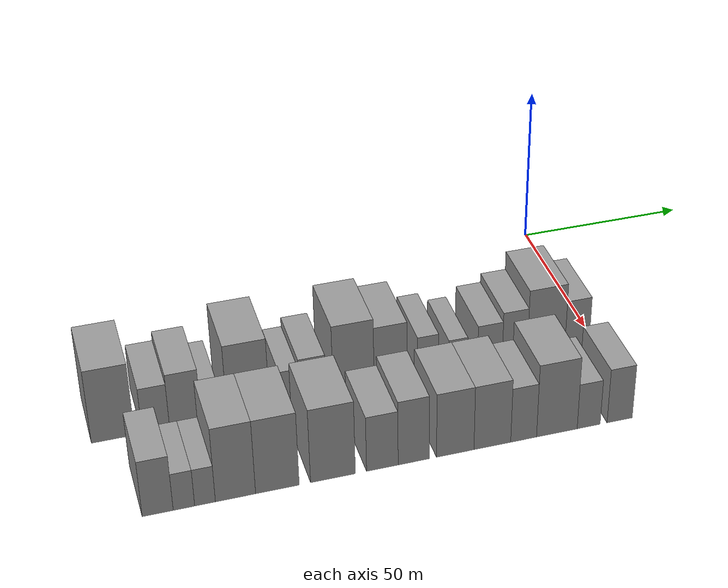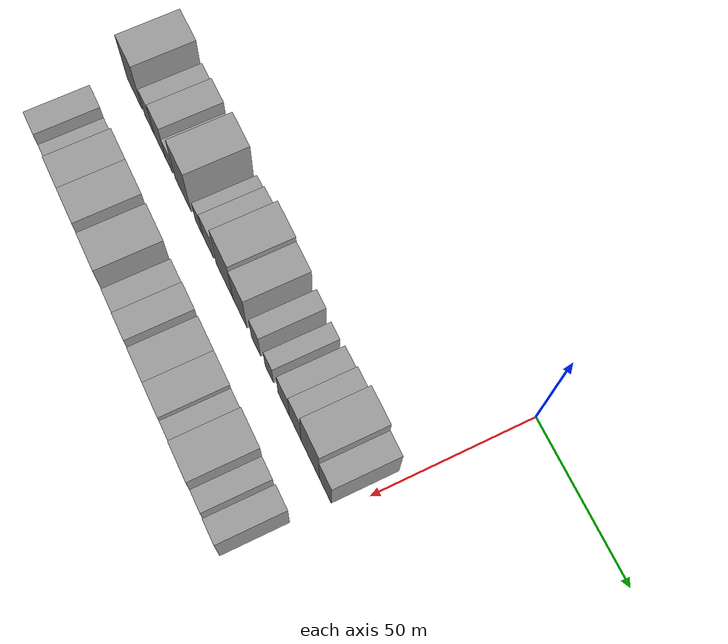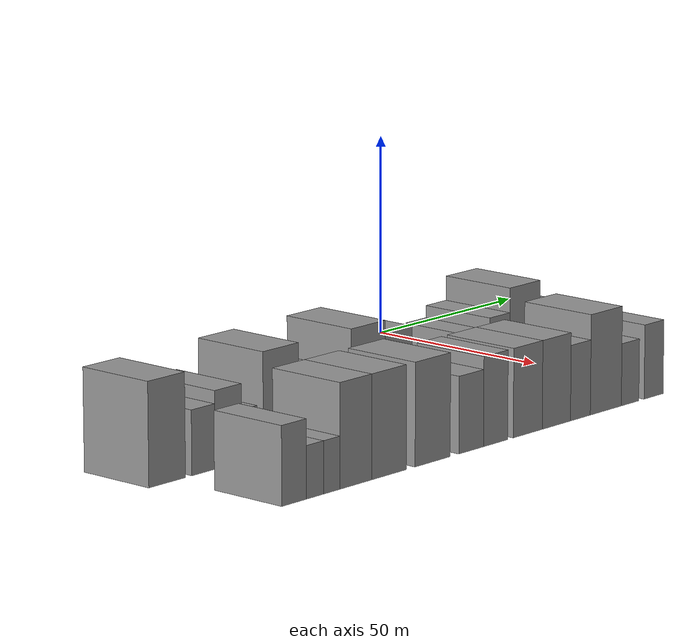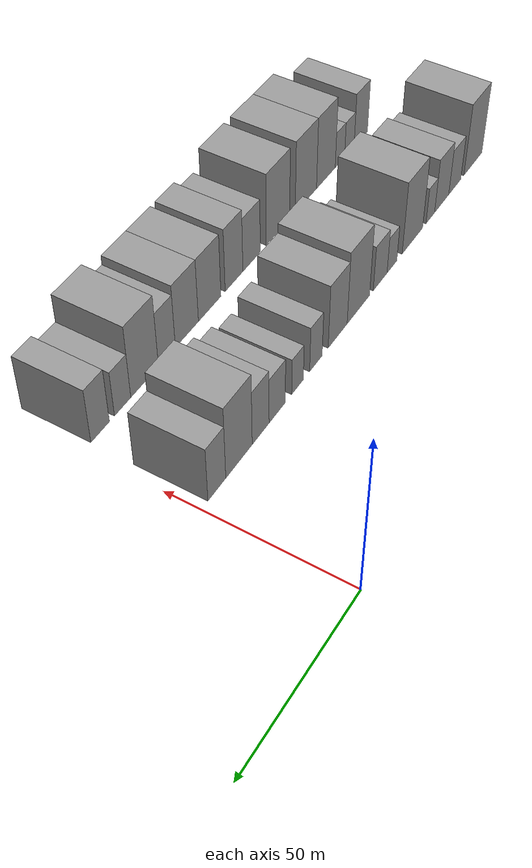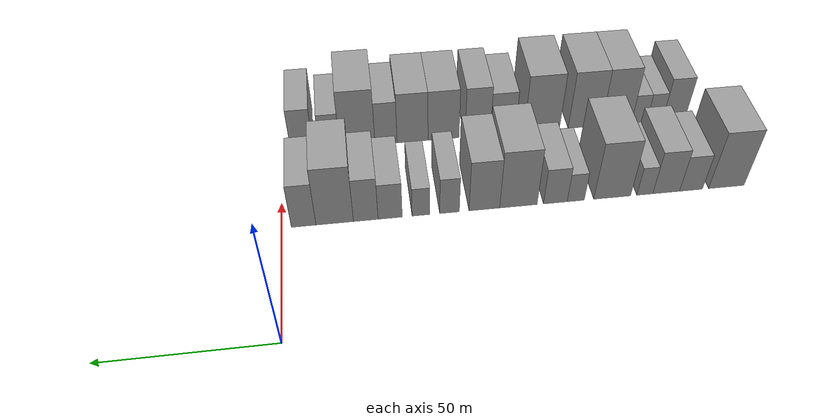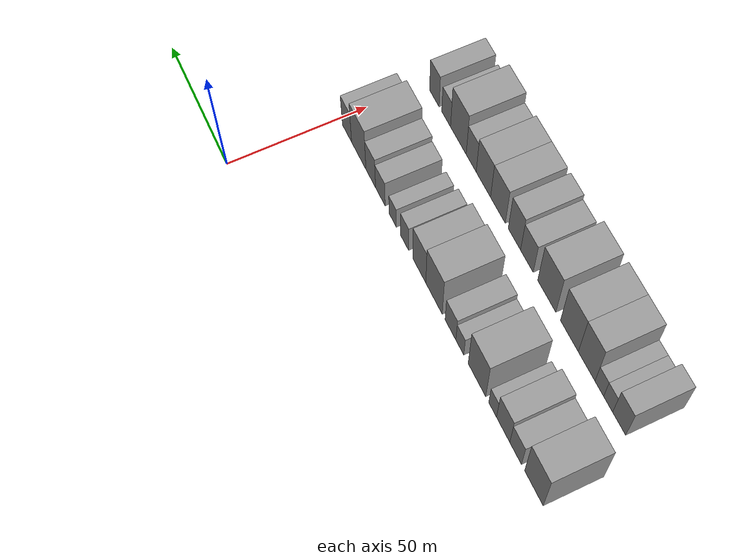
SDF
<sdf version="1.6">
 <world name="default">
  <model name="building_16">
   <static>1</static>
   <pose>50.0000 -138.3980 0 0.000000 0.000000 0.000000</pose>
   <link name="link">
    <pose>0 0 12.00 0 0 0</pose>
    <collision name="collision"><geometry><box><size>20.0000 11.5305 24.0000</size></box></geometry></collision>
    <visual name="visual">
     <cast_shadows>0</cast_shadows>
     <geometry><box><size>20.0000 11.5305 24.0000</size></box></geometry>
     <material>
      <script>
       <uri>model://grey_wall/materials/scripts</uri>
       <uri>model://grey_wall/materials/textures</uri>
       <name>vrc/grey_wall</name>
      </script>
     </material>
    </visual>
   </link>
  </model>
  <model name="building_17">
   <static>1</static>
   <pose>50.0000 -126.9144 0 0.000000 0.000000 0.000000</pose>
   <link name="link">
    <pose>0 0 7.50 0 0 0</pose>
    <collision name="collision"><geometry><box><size>20.0000 7.4367 15.0000</size></box></geometry></collision>
    <visual name="visual">
     <cast_shadows>0</cast_shadows>
     <geometry><box><size>20.0000 7.4367 15.0000</size></box></geometry>
     <material>
      <script>
       <uri>model://grey_wall/materials/scripts</uri>
       <uri>model://grey_wall/materials/textures</uri>
       <name>vrc/grey_wall</name>
      </script>
     </material>
    </visual>
   </link>
  </model>
  <model name="building_18">
   <static>1</static>
   <pose>50.0000 -118.8978 0 0.000000 0.000000 0.000000</pose>
   <link name="link">
    <pose>0 0 9.00 0 0 0</pose>
    <collision name="collision"><geometry><box><size>20.0000 8.5964 18.0000</size></box></geometry></collision>
    <visual name="visual">
     <cast_shadows>0</cast_shadows>
     <geometry><box><size>20.0000 8.5964 18.0000</size></box></geometry>
     <material>
      <script>
       <uri>model://grey_wall/materials/scripts</uri>
       <uri>model://grey_wall/materials/textures</uri>
       <name>vrc/grey_wall</name>
      </script>
     </material>
    </visual>
   </link>
  </model>
  <model name="building_19">
   <static>1</static>
   <pose>50.0000 -112.0478 0 0.000000 0.000000 0.000000</pose>
   <link name="link">
    <pose>0 0 6.00 0 0 0</pose>
    <collision name="collision"><geometry><box><size>20.0000 5.1036 12.0000</size></box></geometry></collision>
    <visual name="visual">
     <cast_shadows>0</cast_shadows>
     <geometry><box><size>20.0000 5.1036 12.0000</size></box></geometry>
     <material>
      <script>
       <uri>model://grey_wall/materials/scripts</uri>
       <uri>model://grey_wall/materials/textures</uri>
       <name>vrc/grey_wall</name>
      </script>
     </material>
    </visual>
   </link>
  </model>
  <model name="building_20">
   <static>1</static>
   <pose>50.0000 -101.6275 0 0.000000 0.000000 0.000000</pose>
   <link name="link">
    <pose>0 0 12.00 0 0 0</pose>
    <collision name="collision"><geometry><box><size>20.0000 11.7370 24.0000</size></box></geometry></collision>
    <visual name="visual">
     <cast_shadows>0</cast_shadows>
     <geometry><box><size>20.0000 11.7370 24.0000</size></box></geometry>
     <material>
      <script>
       <uri>model://grey_wall/materials/scripts</uri>
       <uri>model://grey_wall/materials/textures</uri>
       <name>vrc/grey_wall</name>
      </script>
     </material>
    </visual>
   </link>
  </model>
  <model name="building_21">
   <static>1</static>
   <pose>50.0000 -90.0536 0 0.000000 0.000000 0.000000</pose>
   <link name="link">
    <pose>0 0 6.00 0 0 0</pose>
    <collision name="collision"><geometry><box><size>20.0000 5.4109 12.0000</size></box></geometry></collision>
    <visual name="visual">
     <cast_shadows>0</cast_shadows>
     <geometry><box><size>20.0000 5.4109 12.0000</size></box></geometry>
     <material>
      <script>
       <uri>model://grey_wall/materials/scripts</uri>
       <uri>model://grey_wall/materials/textures</uri>
       <name>vrc/grey_wall</name>
      </script>
     </material>
    </visual>
   </link>
  </model>
  <model name="building_22">
   <static>1</static>
   <pose>50.0000 -83.6219 0 0.000000 0.000000 0.000000</pose>
   <link name="link">
    <pose>0 0 7.50 0 0 0</pose>
    <collision name="collision"><geometry><box><size>20.0000 7.4524 15.0000</size></box></geometry></collision>
    <visual name="visual">
     <cast_shadows>0</cast_shadows>
     <geometry><box><size>20.0000 7.4524 15.0000</size></box></geometry>
     <material>
      <script>
       <uri>model://grey_wall/materials/scripts</uri>
       <uri>model://grey_wall/materials/textures</uri>
       <name>vrc/grey_wall</name>
      </script>
     </material>
    </visual>
   </link>
  </model>
  <model name="building_23">
   <static>1</static>
   <pose>50.0000 -72.0594 0 0.000000 0.000000 0.000000</pose>
   <link name="link">
    <pose>0 0 12.00 0 0 0</pose>
    <collision name="collision"><geometry><box><size>20.0000 11.6725 24.0000</size></box></geometry></collision>
    <visual name="visual">
     <cast_shadows>0</cast_shadows>
     <geometry><box><size>20.0000 11.6725 24.0000</size></box></geometry>
     <material>
      <script>
       <uri>model://grey_wall/materials/scripts</uri>
       <uri>model://grey_wall/materials/textures</uri>
       <name>vrc/grey_wall</name>
      </script>
     </material>
    </visual>
   </link>
  </model>
  <model name="building_24">
   <static>1</static>
   <pose>50.0000 -61.4678 0 0.000000 0.000000 0.000000</pose>
   <link name="link">
    <pose>0 0 10.50 0 0 0</pose>
    <collision name="collision"><geometry><box><size>20.0000 9.5107 21.0000</size></box></geometry></collision>
    <visual name="visual">
     <cast_shadows>0</cast_shadows>
     <geometry><box><size>20.0000 9.5107 21.0000</size></box></geometry>
     <material>
      <script>
       <uri>model://grey_wall/materials/scripts</uri>
       <uri>model://grey_wall/materials/textures</uri>
       <name>vrc/grey_wall</name>
      </script>
     </material>
    </visual>
   </link>
  </model>
  <model name="building_25">
   <static>1</static>
   <pose>50.0000 -50.6916 0 0.000000 0.000000 0.000000</pose>
   <link name="link">
    <pose>0 0 7.50 0 0 0</pose>
    <collision name="collision"><geometry><box><size>20.0000 6.0417 15.0000</size></box></geometry></collision>
    <visual name="visual">
     <cast_shadows>0</cast_shadows>
     <geometry><box><size>20.0000 6.0417 15.0000</size></box></geometry>
     <material>
      <script>
       <uri>model://grey_wall/materials/scripts</uri>
       <uri>model://grey_wall/materials/textures</uri>
       <name>vrc/grey_wall</name>
      </script>
     </material>
    </visual>
   </link>
  </model>
  <model name="building_26">
   <static>1</static>
   <pose>50.0000 -41.9416 0 0.000000 0.000000 0.000000</pose>
   <link name="link">
    <pose>0 0 6.00 0 0 0</pose>
    <collision name="collision"><geometry><box><size>20.0000 5.4582 12.0000</size></box></geometry></collision>
    <visual name="visual">
     <cast_shadows>0</cast_shadows>
     <geometry><box><size>20.0000 5.4582 12.0000</size></box></geometry>
     <material>
      <script>
       <uri>model://grey_wall/materials/scripts</uri>
       <uri>model://grey_wall/materials/textures</uri>
       <name>vrc/grey_wall</name>
      </script>
     </material>
    </visual>
   </link>
  </model>
  <model name="building_27">
   <static>1</static>
   <pose>50.0000 -32.5497 0 0.000000 0.000000 0.000000</pose>
   <link name="link">
    <pose>0 0 7.50 0 0 0</pose>
    <collision name="collision"><geometry><box><size>20.0000 7.3256 15.0000</size></box></geometry></collision>
    <visual name="visual">
     <cast_shadows>0</cast_shadows>
     <geometry><box><size>20.0000 7.3256 15.0000</size></box></geometry>
     <material>
      <script>
       <uri>model://grey_wall/materials/scripts</uri>
       <uri>model://grey_wall/materials/textures</uri>
       <name>vrc/grey_wall</name>
      </script>
     </material>
    </visual>
   </link>
  </model>
  <model name="building_28">
   <static>1</static>
   <pose>50.0000 -25.1557 0 0.000000 0.000000 0.000000</pose>
   <link name="link">
    <pose>0 0 9.00 0 0 0</pose>
    <collision name="collision"><geometry><box><size>20.0000 7.4624 18.0000</size></box></geometry></collision>
    <visual name="visual">
     <cast_shadows>0</cast_shadows>
     <geometry><box><size>20.0000 7.4624 18.0000</size></box></geometry>
     <material>
      <script>
       <uri>model://grey_wall/materials/scripts</uri>
       <uri>model://grey_wall/materials/textures</uri>
       <name>vrc/grey_wall</name>
      </script>
     </material>
    </visual>
   </link>
  </model>
  <model name="building_29">
   <static>1</static>
   <pose>50.0000 -15.7782 0 0.000000 0.000000 0.000000</pose>
   <link name="link">
    <pose>0 0 12.00 0 0 0</pose>
    <collision name="collision"><geometry><box><size>20.0000 11.2925 24.0000</size></box></geometry></collision>
    <visual name="visual">
     <cast_shadows>0</cast_shadows>
     <geometry><box><size>20.0000 11.2925 24.0000</size></box></geometry>
     <material>
      <script>
       <uri>model://grey_wall/materials/scripts</uri>
       <uri>model://grey_wall/materials/textures</uri>
       <name>vrc/grey_wall</name>
      </script>
     </material>
    </visual>
   </link>
  </model>
  <model name="building_30">
   <static>1</static>
   <pose>50.0000 -6.4503 0 0.000000 0.000000 0.000000</pose>
   <link name="link">
    <pose>0 0 9.00 0 0 0</pose>
    <collision name="collision"><geometry><box><size>20.0000 7.3634 18.0000</size></box></geometry></collision>
    <visual name="visual">
     <cast_shadows>0</cast_shadows>
     <geometry><box><size>20.0000 7.3634 18.0000</size></box></geometry>
     <material>
      <script>
       <uri>model://grey_wall/materials/scripts</uri>
       <uri>model://grey_wall/materials/textures</uri>
       <name>vrc/grey_wall</name>
      </script>
     </material>
    </visual>
   </link>
  </model>
  <model name="building_74">
   <static>1</static>
   <pose>82.0000 -132.0111 0 0.000000 0.000000 0.000000</pose>
   <link name="link">
    <pose>0 0 9.00 0 0 0</pose>
    <collision name="collision"><geometry><box><size>20.0000 7.8913 18.0000</size></box></geometry></collision>
    <visual name="visual">
     <cast_shadows>0</cast_shadows>
     <geometry><box><size>20.0000 7.8913 18.0000</size></box></geometry>
     <material>
      <script>
       <uri>model://grey_wall/materials/scripts</uri>
       <uri>model://grey_wall/materials/textures</uri>
       <name>vrc/grey_wall</name>
      </script>
     </material>
    </visual>
   </link>
  </model>
  <model name="building_75">
   <static>1</static>
   <pose>82.0000 -125.3163 0 0.000000 0.000000 0.000000</pose>
   <link name="link">
    <pose>0 0 6.00 0 0 0</pose>
    <collision name="collision"><geometry><box><size>20.0000 5.4982 12.0000</size></box></geometry></collision>
    <visual name="visual">
     <cast_shadows>0</cast_shadows>
     <geometry><box><size>20.0000 5.4982 12.0000</size></box></geometry>
     <material>
      <script>
       <uri>model://grey_wall/materials/scripts</uri>
       <uri>model://grey_wall/materials/textures</uri>
       <name>vrc/grey_wall</name>
      </script>
     </material>
    </visual>
   </link>
  </model>
  <model name="building_76">
   <static>1</static>
   <pose>82.0000 -119.8994 0 0.000000 0.000000 0.000000</pose>
   <link name="link">
    <pose>0 0 6.00 0 0 0</pose>
    <collision name="collision"><geometry><box><size>20.0000 5.3358 12.0000</size></box></geometry></collision>
    <visual name="visual">
     <cast_shadows>0</cast_shadows>
     <geometry><box><size>20.0000 5.3358 12.0000</size></box></geometry>
     <material>
      <script>
       <uri>model://grey_wall/materials/scripts</uri>
       <uri>model://grey_wall/materials/textures</uri>
       <name>vrc/grey_wall</name>
      </script>
     </material>
    </visual>
   </link>
  </model>
  <model name="building_77">
   <static>1</static>
   <pose>82.0000 -112.0105 0 0.000000 0.000000 0.000000</pose>
   <link name="link">
    <pose>0 0 12.00 0 0 0</pose>
    <collision name="collision"><geometry><box><size>20.0000 10.4420 24.0000</size></box></geometry></collision>
    <visual name="visual">
     <cast_shadows>0</cast_shadows>
     <geometry><box><size>20.0000 10.4420 24.0000</size></box></geometry>
     <material>
      <script>
       <uri>model://grey_wall/materials/scripts</uri>
       <uri>model://grey_wall/materials/textures</uri>
       <name>vrc/grey_wall</name>
      </script>
     </material>
    </visual>
   </link>
  </model>
  <model name="building_78">
   <static>1</static>
   <pose>82.0000 -101.0616 0 0.000000 0.000000 0.000000</pose>
   <link name="link">
    <pose>0 0 12.00 0 0 0</pose>
    <collision name="collision"><geometry><box><size>20.0000 11.4559 24.0000</size></box></geometry></collision>
    <visual name="visual">
     <cast_shadows>0</cast_shadows>
     <geometry><box><size>20.0000 11.4559 24.0000</size></box></geometry>
     <material>
      <script>
       <uri>model://grey_wall/materials/scripts</uri>
       <uri>model://grey_wall/materials/textures</uri>
       <name>vrc/grey_wall</name>
      </script>
     </material>
    </visual>
   </link>
  </model>
  <model name="building_79">
   <static>1</static>
   <pose>82.0000 -86.3433 0 0.000000 0.000000 0.000000</pose>
   <link name="link">
    <pose>0 0 12.00 0 0 0</pose>
    <collision name="collision"><geometry><box><size>20.0000 11.9807 24.0000</size></box></geometry></collision>
    <visual name="visual">
     <cast_shadows>0</cast_shadows>
     <geometry><box><size>20.0000 11.9807 24.0000</size></box></geometry>
     <material>
      <script>
       <uri>model://grey_wall/materials/scripts</uri>
       <uri>model://grey_wall/materials/textures</uri>
       <name>vrc/grey_wall</name>
      </script>
     </material>
    </visual>
   </link>
  </model>
  <model name="building_80">
   <static>1</static>
   <pose>82.0000 -73.0701 0 0.000000 0.000000 0.000000</pose>
   <link name="link">
    <pose>0 0 9.00 0 0 0</pose>
    <collision name="collision"><geometry><box><size>20.0000 8.5657 18.0000</size></box></geometry></collision>
    <visual name="visual">
     <cast_shadows>0</cast_shadows>
     <geometry><box><size>20.0000 8.5657 18.0000</size></box></geometry>
     <material>
      <script>
       <uri>model://grey_wall/materials/scripts</uri>
       <uri>model://grey_wall/materials/textures</uri>
       <name>vrc/grey_wall</name>
      </script>
     </material>
    </visual>
   </link>
  </model>
  <model name="building_81">
   <static>1</static>
   <pose>82.0000 -64.5421 0 0.000000 0.000000 0.000000</pose>
   <link name="link">
    <pose>0 0 10.50 0 0 0</pose>
    <collision name="collision"><geometry><box><size>20.0000 8.4904 21.0000</size></box></geometry></collision>
    <visual name="visual">
     <cast_shadows>0</cast_shadows>
     <geometry><box><size>20.0000 8.4904 21.0000</size></box></geometry>
     <material>
      <script>
       <uri>model://grey_wall/materials/scripts</uri>
       <uri>model://grey_wall/materials/textures</uri>
       <name>vrc/grey_wall</name>
      </script>
     </material>
    </visual>
   </link>
  </model>
  <model name="building_82">
   <static>1</static>
   <pose>82.0000 -53.1155 0 0.000000 0.000000 0.000000</pose>
   <link name="link">
    <pose>0 0 10.50 0 0 0</pose>
    <collision name="collision"><geometry><box><size>20.0000 10.3629 21.0000</size></box></geometry></collision>
    <visual name="visual">
     <cast_shadows>0</cast_shadows>
     <geometry><box><size>20.0000 10.3629 21.0000</size></box></geometry>
     <material>
      <script>
       <uri>model://grey_wall/materials/scripts</uri>
       <uri>model://grey_wall/materials/textures</uri>
       <name>vrc/grey_wall</name>
      </script>
     </material>
    </visual>
   </link>
  </model>
  <model name="building_83">
   <static>1</static>
   <pose>82.0000 -42.7945 0 0.000000 0.000000 0.000000</pose>
   <link name="link">
    <pose>0 0 10.50 0 0 0</pose>
    <collision name="collision"><geometry><box><size>20.0000 10.2789 21.0000</size></box></geometry></collision>
    <visual name="visual">
     <cast_shadows>0</cast_shadows>
     <geometry><box><size>20.0000 10.2789 21.0000</size></box></geometry>
     <material>
      <script>
       <uri>model://grey_wall/materials/scripts</uri>
       <uri>model://grey_wall/materials/textures</uri>
       <name>vrc/grey_wall</name>
      </script>
     </material>
    </visual>
   </link>
  </model>
  <model name="building_84">
   <static>1</static>
   <pose>82.0000 -34.0099 0 0.000000 0.000000 0.000000</pose>
   <link name="link">
    <pose>0 0 9.00 0 0 0</pose>
    <collision name="collision"><geometry><box><size>20.0000 7.2905 18.0000</size></box></geometry></collision>
    <visual name="visual">
     <cast_shadows>0</cast_shadows>
     <geometry><box><size>20.0000 7.2905 18.0000</size></box></geometry>
     <material>
      <script>
       <uri>model://grey_wall/materials/scripts</uri>
       <uri>model://grey_wall/materials/textures</uri>
       <name>vrc/grey_wall</name>
      </script>
     </material>
    </visual>
   </link>
  </model>
  <model name="building_85">
   <static>1</static>
   <pose>82.0000 -24.5739 0 0.000000 0.000000 0.000000</pose>
   <link name="link">
    <pose>0 0 12.00 0 0 0</pose>
    <collision name="collision"><geometry><box><size>20.0000 11.5815 24.0000</size></box></geometry></collision>
    <visual name="visual">
     <cast_shadows>0</cast_shadows>
     <geometry><box><size>20.0000 11.5815 24.0000</size></box></geometry>
     <material>
      <script>
       <uri>model://grey_wall/materials/scripts</uri>
       <uri>model://grey_wall/materials/textures</uri>
       <name>vrc/grey_wall</name>
      </script>
     </material>
    </visual>
   </link>
  </model>
  <model name="building_86">
   <static>1</static>
   <pose>82.0000 -15.4796 0 0.000000 0.000000 0.000000</pose>
   <link name="link">
    <pose>0 0 7.50 0 0 0</pose>
    <collision name="collision"><geometry><box><size>20.0000 6.6070 15.0000</size></box></geometry></collision>
    <visual name="visual">
     <cast_shadows>0</cast_shadows>
     <geometry><box><size>20.0000 6.6070 15.0000</size></box></geometry>
     <material>
      <script>
       <uri>model://grey_wall/materials/scripts</uri>
       <uri>model://grey_wall/materials/textures</uri>
       <name>vrc/grey_wall</name>
      </script>
     </material>
    </visual>
   </link>
  </model>
  <model name="building_87">
   <static>1</static>
   <pose>82.0000 -6.5314 0 0.000000 0.000000 0.000000</pose>
   <link name="link">
    <pose>0 0 9.00 0 0 0</pose>
    <collision name="collision"><geometry><box><size>20.0000 7.2894 18.0000</size></box></geometry></collision>
    <visual name="visual">
     <cast_shadows>0</cast_shadows>
     <geometry><box><size>20.0000 7.2894 18.0000</size></box></geometry>
     <material>
      <script>
       <uri>model://grey_wall/materials/scripts</uri>
       <uri>model://grey_wall/materials/textures</uri>
       <name>vrc/grey_wall</name>
      </script>
     </material>
    </visual>
   </link>
  </model>
 </world>
</sdf>
